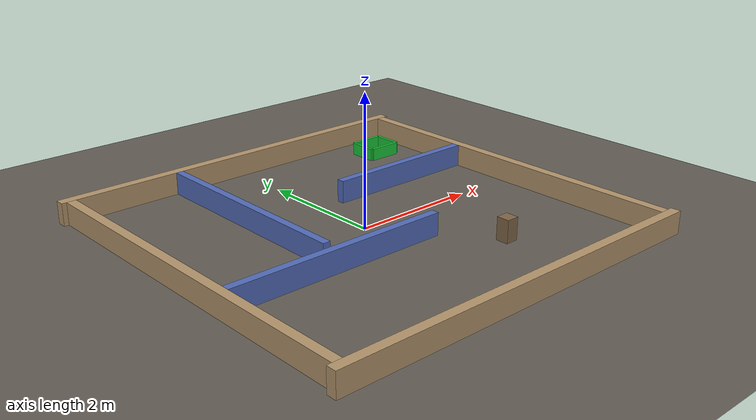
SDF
<sdf version="1.8">
 <world name="patrol_arena">
  <physics name="1ms" type="ignored">
   <max_step_size>0.001</max_step_size>
   <real_time_factor>1.0</real_time_factor>
  </physics>
  <plugin filename="gz-sim-physics-system" name="gz::sim::systems::Physics"/>
  <plugin filename="gz-sim-sensors-system" name="gz::sim::systems::Sensors">
   <render_engine>ogre2</render_engine>
  </plugin>
  <plugin filename="gz-sim-user-commands-system" name="gz::sim::systems::UserCommands"/>
  <plugin filename="gz-sim-scene-broadcaster-system" name="gz::sim::systems::SceneBroadcaster"/>
  <plugin filename="gz-sim-contact-system" name="gz::sim::systems::Contact"/>
  <plugin filename="gz-sim-imu-system" name="gz::sim::systems::Imu"/>
  <light type="directional" name="overhead">
   <cast_shadows>false</cast_shadows>
   <pose>0 0 10 0 0 0</pose>
   <diffuse>1.0 1.0 1.0 1</diffuse>
   <specular>0.05 0.05 0.05 1</specular>
   <direction>0 0 -1</direction>
  </light>
  <model name="ground_plane">
   <static>true</static>
   <link name="link">
    <collision name="col"><geometry><plane><normal>0 0 1</normal><size>20 20</size></plane></geometry></collision>
    <visual name="vis">
     <geometry><plane><normal>0 0 1</normal><size>20 20</size></plane></geometry>
     <material><ambient>0.38 0.36 0.33 1</ambient><diffuse>0.38 0.36 0.33 1</diffuse></material>
    </visual>
   </link>
  </model>
  <model name="wall_north">
   <static>true</static>
   <pose>0 3 0.175 0 0 0</pose>
   <link name="link">
    <collision name="c"><geometry><box><size>6.30 0.15 0.35</size></box></geometry></collision>
    <visual name="v">
     <geometry><box><size>6.30 0.15 0.35</size></box></geometry>
     <material><ambient>0.70 0.58 0.42 1</ambient><diffuse>0.70 0.58 0.42 1</diffuse></material>
    </visual>
   </link>
  </model>
  <model name="wall_south">
   <static>true</static>
   <pose>0 -3 0.175 0 0 0</pose>
   <link name="link">
    <collision name="c"><geometry><box><size>6.30 0.15 0.35</size></box></geometry></collision>
    <visual name="v">
     <geometry><box><size>6.30 0.15 0.35</size></box></geometry>
     <material><ambient>0.70 0.58 0.42 1</ambient><diffuse>0.70 0.58 0.42 1</diffuse></material>
    </visual>
   </link>
  </model>
  <model name="wall_east">
   <static>true</static>
   <pose>3 0 0.175 0 0 0</pose>
   <link name="link">
    <collision name="c"><geometry><box><size>0.15 5.85 0.35</size></box></geometry></collision>
    <visual name="v">
     <geometry><box><size>0.15 5.85 0.35</size></box></geometry>
     <material><ambient>0.70 0.58 0.42 1</ambient><diffuse>0.70 0.58 0.42 1</diffuse></material>
    </visual>
   </link>
  </model>
  <model name="wall_west">
   <static>true</static>
   <pose>-3 0 0.175 0 0 0</pose>
   <link name="link">
    <collision name="c"><geometry><box><size>0.15 5.85 0.35</size></box></geometry></collision>
    <visual name="v">
     <geometry><box><size>0.15 5.85 0.35</size></box></geometry>
     <material><ambient>0.70 0.58 0.42 1</ambient><diffuse>0.70 0.58 0.42 1</diffuse></material>
    </visual>
   </link>
  </model>
  <model name="div_nw_v">
   <static>true</static>
   <pose>-1.2 1.1625 0.175 0 0 0</pose>
   <link name="link">
    <collision name="c"><geometry><box><size>0.12 3.525 0.35</size></box></geometry></collision>
    <visual name="v">
     <geometry><box><size>0.12 3.525 0.35</size></box></geometry>
     <material><ambient>0.32 0.42 0.72 1</ambient><diffuse>0.32 0.42 0.72 1</diffuse></material>
    </visual>
   </link>
  </model>
  <model name="div_p1">
   <static>true</static>
   <pose>1.6625 1.0 0.175 0 0 0</pose>
   <link name="link">
    <collision name="c"><geometry><box><size>2.525 0.12 0.35</size></box></geometry></collision>
    <visual name="v">
     <geometry><box><size>2.525 0.12 0.35</size></box></geometry>
     <material><ambient>0.32 0.42 0.72 1</ambient><diffuse>0.32 0.42 0.72 1</diffuse></material>
    </visual>
   </link>
  </model>
  <model name="div_p2">
   <static>true</static>
   <pose>-1.1625 -0.8 0.175 0 0 0</pose>
   <link name="link">
    <collision name="c"><geometry><box><size>3.525 0.12 0.35</size></box></geometry></collision>
    <visual name="v">
     <geometry><box><size>3.525 0.12 0.35</size></box></geometry>
     <material><ambient>0.32 0.42 0.72 1</ambient><diffuse>0.32 0.42 0.72 1</diffuse></material>
    </visual>
   </link>
  </model>
  <model name="pillar_se">
   <static>true</static>
   <pose>1.2 -1.6 0.175 0 0 0</pose>
   <link name="link">
    <collision name="c"><geometry><box><size>0.20 0.20 0.35</size></box></geometry></collision>
    <visual name="v">
     <geometry><box><size>0.20 0.20 0.35</size></box></geometry>
     <material><ambient>0.50 0.40 0.28 1</ambient><diffuse>0.50 0.40 0.28 1</diffuse></material>
    </visual>
   </link>
  </model>
  <model name="bin_n">
   <static>true</static>
   <pose>2.3 2.527 0.10 0 0 0</pose>
   <link name="link">
    <collision name="c"><geometry><box><size>0.54 0.05 0.20</size></box></geometry></collision>
    <visual name="v">
     <geometry><box><size>0.54 0.05 0.20</size></box></geometry>
     <material><ambient>0.10 0.78 0.22 1</ambient><diffuse>0.10 0.78 0.22 1</diffuse></material>
    </visual>
   </link>
  </model>
  <model name="bin_s">
   <static>true</static>
   <pose>2.3 2.073 0.10 0 0 0</pose>
   <link name="link">
    <collision name="c"><geometry><box><size>0.54 0.05 0.20</size></box></geometry></collision>
    <visual name="v">
     <geometry><box><size>0.54 0.05 0.20</size></box></geometry>
     <material><ambient>0.10 0.78 0.22 1</ambient><diffuse>0.10 0.78 0.22 1</diffuse></material>
    </visual>
   </link>
  </model>
  <model name="bin_e">
   <static>true</static>
   <pose>2.577 2.3 0.10 0 0 0</pose>
   <link name="link">
    <collision name="c"><geometry><box><size>0.05 0.45 0.20</size></box></geometry></collision>
    <visual name="v">
     <geometry><box><size>0.05 0.45 0.20</size></box></geometry>
     <material><ambient>0.10 0.78 0.22 1</ambient><diffuse>0.10 0.78 0.22 1</diffuse></material>
    </visual>
   </link>
  </model>
  <model name="bin_w">
   <static>true</static>
   <pose>2.023 2.3 0.10 0 0 0</pose>
   <link name="link">
    <collision name="c"><geometry><box><size>0.05 0.45 0.20</size></box></geometry></collision>
    <visual name="v">
     <geometry><box><size>0.05 0.45 0.20</size></box></geometry>
     <material><ambient>0.10 0.78 0.22 1</ambient><diffuse>0.10 0.78 0.22 1</diffuse></material>
    </visual>
   </link>
  </model>
  <model name="bin_floor">
   <static>true</static>
   <pose>2.3 2.3 0.005 0 0 0</pose>
   <link name="link">
    <visual name="v">
     <geometry><box><size>0.45 0.45 0.01</size></box></geometry>
     <material><ambient>0.05 0.55 0.10 1</ambient><diffuse>0.05 0.55 0.10 1</diffuse></material>
    </visual>
   </link>
  </model>
 </world>
</sdf>
